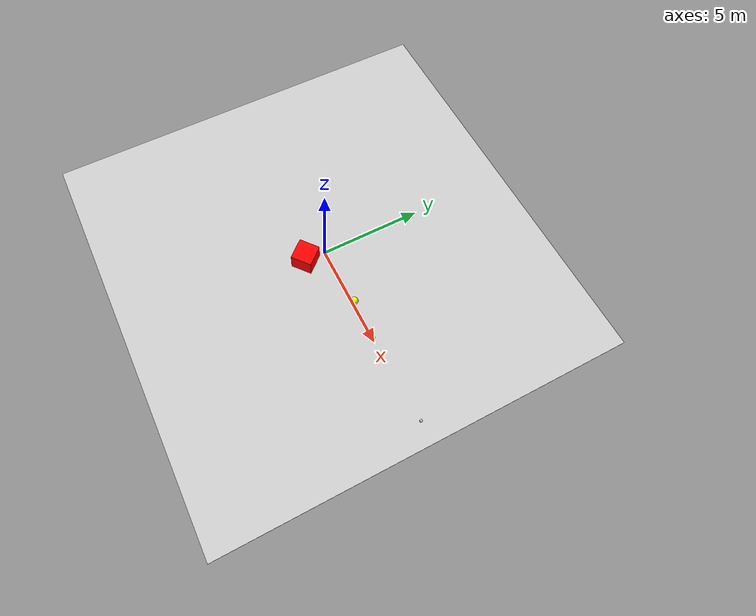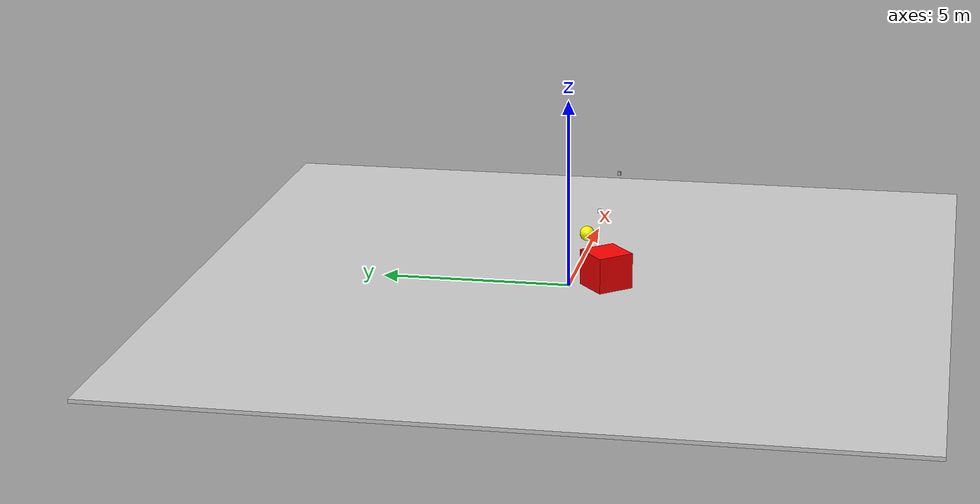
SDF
<sdf version="1.6">
 <world name="ros1_ign">
  <physics name="1ms" type="ode">
   <max_step_size>0.001</max_step_size>
   <real_time_factor>1.0</real_time_factor>
  </physics>
  <plugin filename="libignition-gazebo-physics-system.so" name="ignition::gazebo::systems::Physics"/>
  <plugin filename="libignition-gazebo-sensors-system.so" name="ignition::gazebo::systems::Sensors">
   <render_engine>ogre2</render_engine>
  </plugin>
  <plugin filename="libignition-gazebo-scene-broadcaster-system.so" name="ignition::gazebo::systems::SceneBroadcaster"/>
  <light type="directional" name="sun">
   <pose>0 0 10 0 0 0</pose>
   <diffuse>0.8 0.8 0.8 1</diffuse>
   <specular>0.2 0.2 0.2 1</specular>
   <attenuation>
    <range>1000</range>
    <constant>0.9</constant>
    <linear>0.01</linear>
    <quadratic>0.001</quadratic>
   </attenuation>
   <direction>-0.5 0.1 -0.9</direction>
  </light>
  <model name="ground_plane">
   <static>true</static>
   <link name="link">
    <collision name="collision"><geometry><box><size>20 20 0.1</size></box></geometry></collision>
    <visual name="visual">
     <geometry><box><size>20 20 0.1</size></box></geometry>
     <material>
      <ambient>0.8 0.8 0.8 1</ambient>
      <diffuse>0.8 0.8 0.8 1</diffuse>
      <specular>0.8 0.8 0.8 1</specular>
     </material>
    </visual>
   </link>
  </model>
  <model name="box">
   <pose>0 -1 0.5 0 0 0.7</pose>
   <link name="link">
    <inertial>
     <inertia><ixx>1</ixx><ixy>0</ixy><ixz>0</ixz><iyy>1</iyy><iyz>0</iyz><izz>1</izz></inertia>
     <mass>1.0</mass>
    </inertial>
    <collision name="collision"><geometry><box><size>1 1 1</size></box></geometry></collision>
    <visual name="visual">
     <geometry><box><size>1 1 1</size></box></geometry>
     <material><ambient>1 0 0 1</ambient><diffuse>1 0 0 1</diffuse><specular>1 0 0 1</specular></material>
    </visual>
   </link>
  </model>
  <model name="sphere">
   <pose>3 0 0.5 0 0 0</pose>
   <link name="link">
    <inertial>
     <inertia><ixx>1</ixx><ixy>0</ixy><ixz>0</ixz><iyy>1</iyy><iyz>0</iyz><izz>1</izz></inertia>
     <mass>1.0</mass>
    </inertial>
    <collision name="collision"><geometry><sphere><radius>0.2</radius></sphere></geometry></collision>
    <visual name="visual">
     <geometry><sphere><radius>0.2</radius></sphere></geometry>
     <material><ambient>1 1 0 1</ambient><diffuse>1 1 0 1</diffuse><specular>1 1 0 1</specular></material>
    </visual>
   </link>
  </model>
  <model name="custom_params">
   <pose>5 0 0.5 0 0.0 3.14</pose>
   <link name="link">
    <pose>0.05 0.05 0.05 0 0 0</pose>
    <inertial>
     <mass>0.1</mass>
     <inertia><ixx>0.000166667</ixx><iyy>0.000166667</iyy><izz>0.000166667</izz></inertia>
    </inertial>
    <collision name="collision"><geometry><box><size>0.1 0.1 0.1</size></box></geometry></collision>
    <visual name="visual"><geometry><box><size>0.1 0.1 0.1</size></box></geometry></visual>
    <sensor name="rgbd_camera" type="rgbd_camera">
     <camera>
      <horizontal_fov>1.047</horizontal_fov>
      <image><width>320</width><height>240</height></image>
      <clip><near>0.1</near><far>100</far></clip>
     </camera>
     <always_on>1</always_on>
     <update_rate>30</update_rate>
     <visualize>true</visualize>
     <topic>custom_params</topic>
     <plugin filename="libRos1IgnPointCloud.so" name="ros1_ign_point_cloud::PointCloud">
      <namespace>custom_params</namespace>
      <topic>pc2</topic>
      <frame_id>map</frame_id>
     </plugin>
    </sensor>
   </link>
  </model>
  <model name="default_params">
   <pose>9 0 0.5 0 0.0 3.14</pose>
   <static>true</static>
   <link name="link">
    <collision name="collision"><geometry><box><size>0.1 0.1 0.1</size></box></geometry></collision>
    <visual name="visual"><geometry><box><size>0.1 0.1 0.1</size></box></geometry></visual>
    <sensor name="default_params" type="rgbd_camera">
     <camera>
      <horizontal_fov>1.047</horizontal_fov>
      <image><width>320</width><height>240</height></image>
      <clip><near>0.1</near><far>100</far></clip>
     </camera>
     <always_on>1</always_on>
     <update_rate>30</update_rate>
     <visualize>true</visualize>
     <topic>rgbd_camera</topic>
     <plugin filename="libRos1IgnPointCloud.so" name="ros1_ign_point_cloud::PointCloud"/>
    </sensor>
   </link>
  </model>
 </world>
</sdf>
